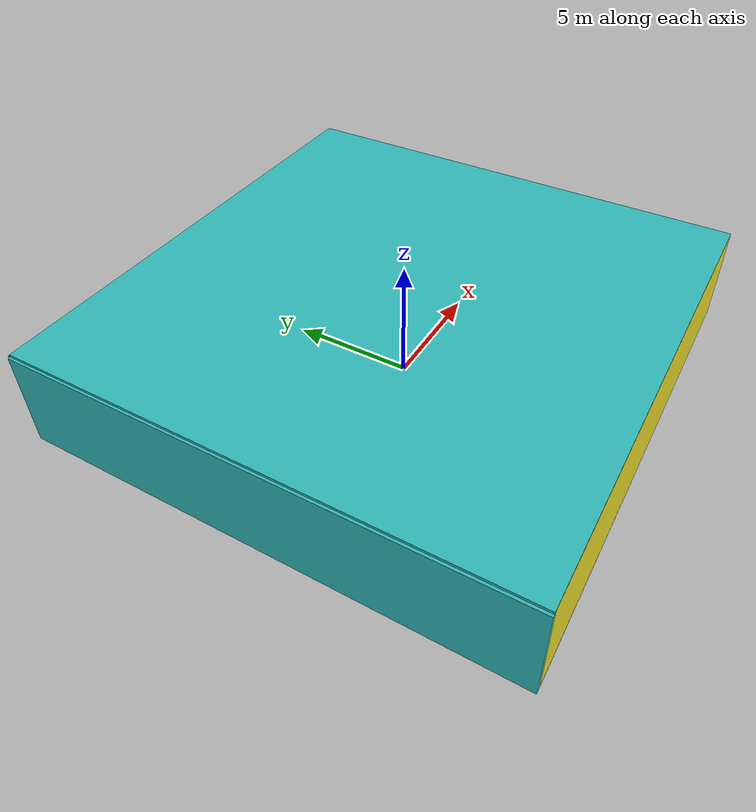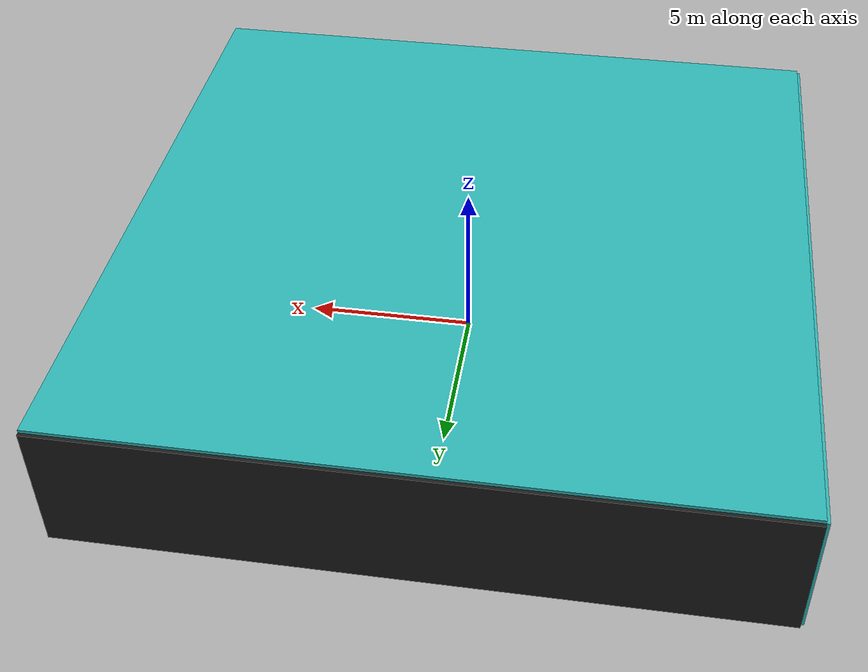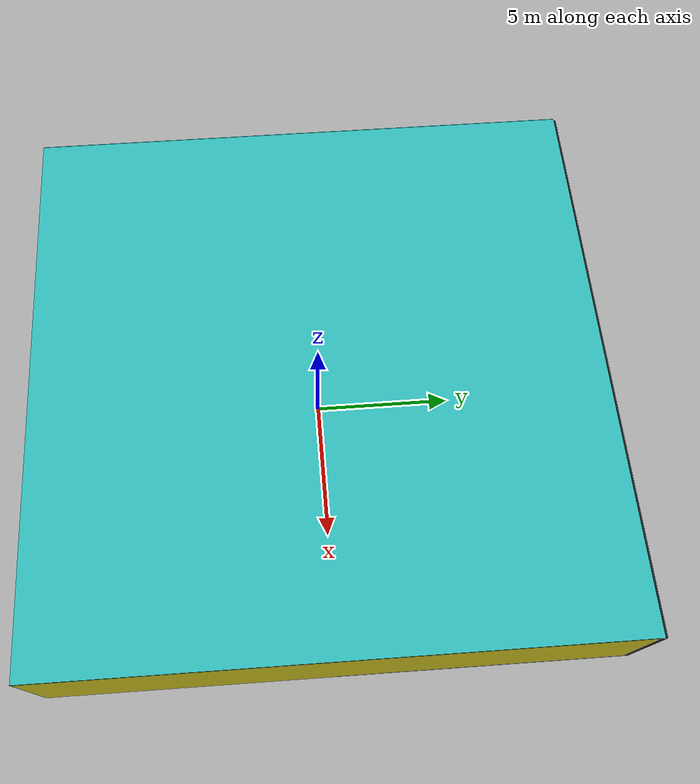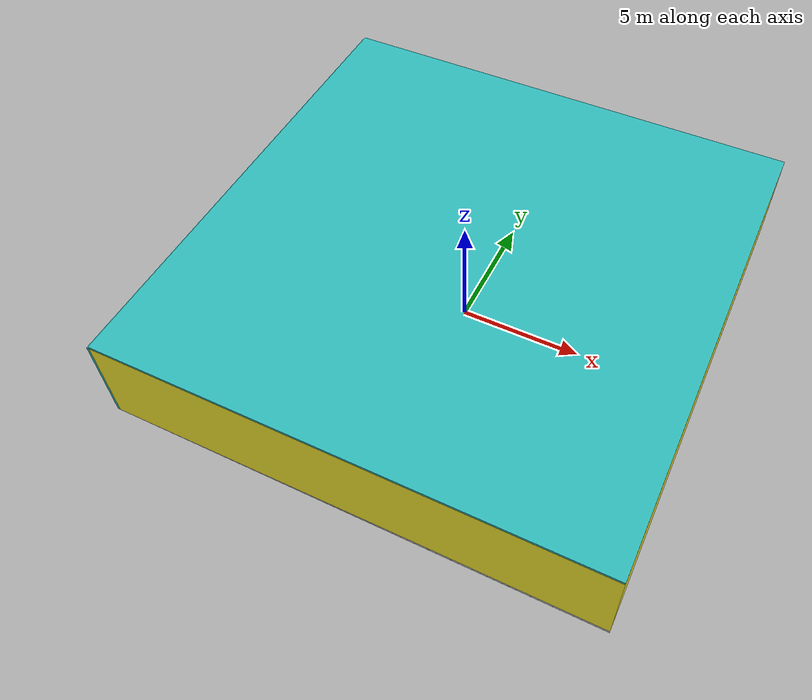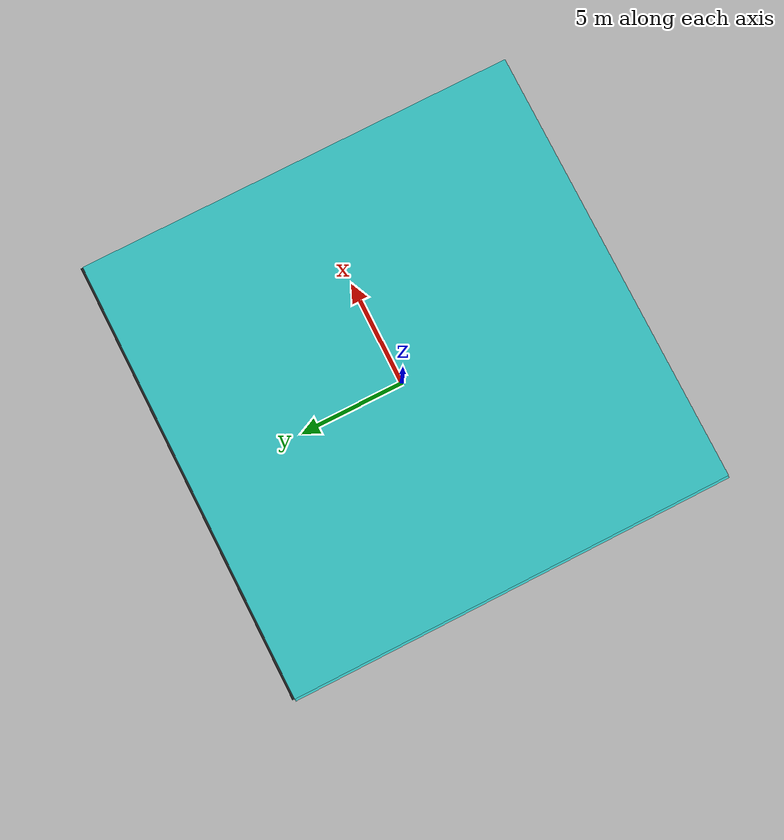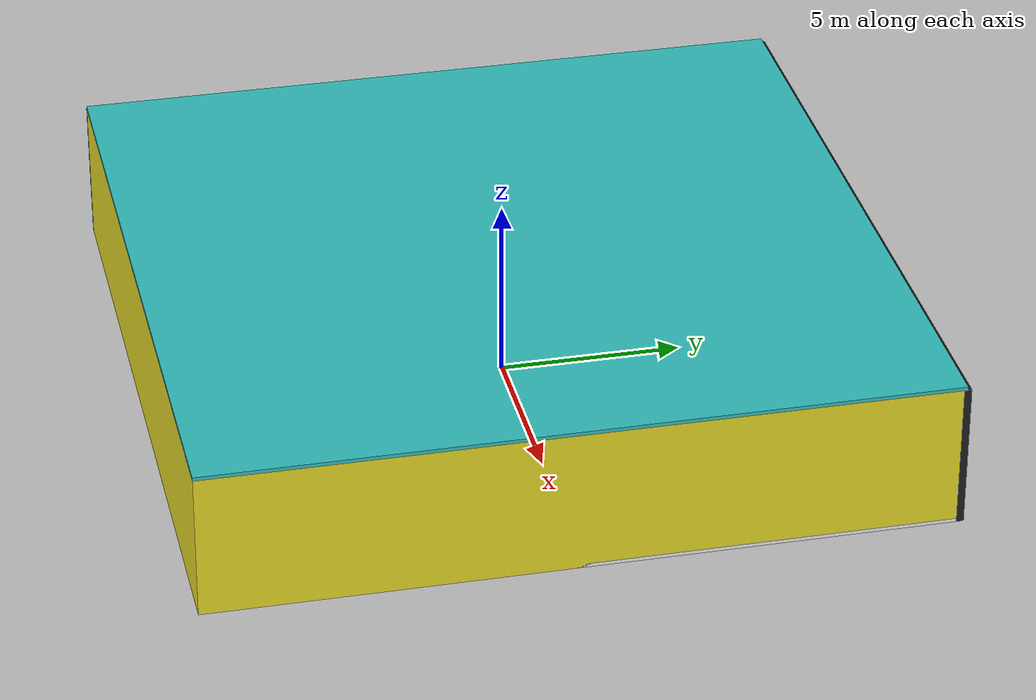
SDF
<sdf version="1.4">
 <world name="default">
  <physics type="ode">
   <max_step_size>0.001</max_step_size>
   <real_time_factor>1</real_time_factor>
   <real_time_update_rate>1000</real_time_update_rate>
   <gravity>0 0 -9.8</gravity>
  </physics>
  <scene><ambient>0.4 0.4 0.4 1</ambient><background>0.7 0.7 0.7 1</background><shadows>1</shadows></scene>
  <model name="Surrounding">
   <static>1</static>
   <link name="Ceiling">
    <collision name="Ceiling_Collision"><geometry><box><size>20 20 0.1</size></box></geometry></collision>
    <visual name="Ceiling_Visual">
     <geometry><box><size>20 20 0.1</size></box></geometry>
     <material>
      <script><uri>file://media/materials/scripts/gazebo.material</uri><name>Gazebo/Turquoise</name></script>
     </material>
    </visual>
    <pose>0 0 4.05 0 0 0</pose>
   </link>
   <link name="Wall_South">
    <collision name="Wall_South_Collision">
     <geometry><box><size>20 0 4</size></box></geometry>
     <pose>0 0 2 0 -0 0</pose>
    </collision>
    <visual name="Wall_South_Visual">
     <pose>0 0 2 0 -0 0</pose>
     <geometry><box><size>20 0 4</size></box></geometry>
     <material>
      <script><uri>file://media/materials/scripts/gazebo.material</uri><name>Gazebo/Yellow</name></script>
     </material>
    </visual>
    <velocity_decay><linear>0</linear><angular>0</angular></velocity_decay>
    <pose>0 -10 0 0 -0 0</pose>
   </link>
   <link name="Wall_East">
    <collision name="Wall_21_Collision">
     <geometry><box><size>20 0 4</size></box></geometry>
     <pose>0 0 2 0 -0 0</pose>
    </collision>
    <visual name="Wall_21_Visual">
     <pose>0 0 2 0 -0 0</pose>
     <geometry><box><size>20 0 4</size></box></geometry>
     <material>
      <script><uri>file://media/materials/scripts/gazebo.material</uri><name>Gazebo/YellowGlow</name></script>
     </material>
    </visual>
    <velocity_decay><linear>0</linear><angular>0</angular></velocity_decay>
    <pose>10 0 0 0 -0 1.5708</pose>
   </link>
   <link name="Wall_North">
    <collision name="Wall_22_Collision">
     <geometry><box><size>20 0.2 4</size></box></geometry>
     <pose>0 0 2 0 -0 0</pose>
    </collision>
    <visual name="Wall_22_Visual">
     <pose>0 0 2 0 -0 0</pose>
     <geometry><box><size>20 0.2 4</size></box></geometry>
     <material>
      <script><uri>file://media/materials/scripts/gazebo.material</uri><name>Gazebo/Black</name></script>
     </material>
    </visual>
    <velocity_decay><linear>0</linear><angular>0</angular></velocity_decay>
    <pose>0 10 0 0 -0 0</pose>
   </link>
   <link name="Wall_West">
    <collision name="Wall_23_Collision">
     <geometry><box><size>20 0.2 4</size></box></geometry>
     <pose>0 0 2 0 -0 0</pose>
    </collision>
    <visual name="Wall_23_Visual">
     <pose>0 0 2 0 -0 0</pose>
     <geometry><box><size>20 0.2 4</size></box></geometry>
     <material>
      <script>
       <uri>file://media/materials/scripts/gazebo.material</uri>
       <name>Gazebo/TurquoiseGlowOutline</name>
      </script>
     </material>
    </visual>
    <velocity_decay><linear>0</linear><angular>0</angular></velocity_decay>
    <pose>-10 0 0 0 0 -1.5708</pose>
   </link>
   <link name="Ground_link">
    <collision name="collision">
     <pose>0 0 .05 0 -0 0</pose>
     <geometry><box><size>20 20 0.1</size></box></geometry>
    </collision>
    <visual name="visual">
     <pose>0 0 .05 0 -0 0</pose>
     <geometry><box><size>20 20 0.1</size></box></geometry>
     <material>
      <script><uri>file://media/materials/scripts/gazebo.material</uri><name>Gazebo/WhiteGlow</name></script>
     </material>
    </visual>
   </link>
   <static>1</static>
  </model>
  <spherical_coordinates>
   <surface_model>EARTH_WGS84</surface_model>
   <latitude_deg>0</latitude_deg>
   <longitude_deg>0</longitude_deg>
   <elevation>0</elevation>
   <heading_deg>0</heading_deg>
  </spherical_coordinates>
  <light name="lightball_0" type="diffuse">
   <diffuse>0.8 0.8 0.8 1</diffuse>
   <specular>0.2 0.2 0.2 1</specular>
   <attenuation>
    <range>100</range>
    <constant>0.7</constant>
    <linear>0.01</linear>
    <quadratic>0.001</quadratic>
   </attenuation>
   <direction>-0.5 0.1 -0.9</direction>
   <pose>-6.14603489672 2.96548696634 3.82552128945 0 0 0</pose>
  </light>
  <light name="lightball_1" type="diffuse">
   <diffuse>0.8 0.8 0.8 1</diffuse>
   <specular>0.2 0.2 0.2 1</specular>
   <attenuation>
    <range>100</range>
    <constant>0.7</constant>
    <linear>0.01</linear>
    <quadratic>0.001</quadratic>
   </attenuation>
   <direction>-0.5 0.1 -0.9</direction>
   <pose>-7.19490152836 6.35351323935 3.30064436338 0 0 0</pose>
  </light>
  <include>
   <uri>model://robocup_3Dsim_goal</uri>
   <pose>-7.86262582595 -0.974140561262 0 0 0 0.203748001858</pose>
  </include>
  <include>
   <uri>model://textured_shapes</uri>
   <pose>-5.28557782527 -7.62732902938 0 0 0 1.49464686372</pose>
  </include>
  <include><uri>model://table</uri><pose>-5.6281731984 -1.16920306084 0 0 0 2.01560322294</pose></include>
  <include><uri>model://table</uri><pose>-5.25078599174 1.80850810094 0 0 0 2.67774276351</pose></include>
  <include><uri>model://table</uri><pose>-0.9122382538 -4.79266404396 0 0 0 0.422676920697</pose></include>
  <include>
   <uri>model://construction_cone</uri>
   <pose>-2.22544098605 -2.27570927697 0 0 0 1.99975531506</pose>
  </include>
  <include><uri>model://cabinet</uri><pose>1.92593707235 -4.9126887268 0 0 0 2.19013814372</pose></include>
  <include><uri>model://cabinet</uri><pose>3.64164623994 2.62885552099 0 0 0 2.97271565612</pose></include>
  <include><uri>model://table</uri><pose>8.50890361373 -0.78650373974 0 0 0 0.659744711573</pose></include>
 </world>
</sdf>

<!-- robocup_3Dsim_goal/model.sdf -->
<sdf version="1.5">
  <model name="robocup_3d_goal">
    <static>true</static>
    <link name="left_post">
      <pose>0 1.05 0.45 0 0 0</pose>
      <collision name="collision">
        <geometry>
          <cylinder>
            <radius>0.05</radius>
            <length>0.9</length>
          </cylinder>
        </geometry>
      </collision>
      <visual name="visual">
        <geometry>
          <cylinder>
            <radius>0.05</radius>
            <length>0.9</length>
          </cylinder>
        </geometry>
        <material>
          <script>
            <uri>file://media/materials/scripts/gazebo.material</uri>
            <name>Gazebo/ZincYellow</name>
          </script>
        </material>
      </visual>
    </link>
    <link name="left_support_horiz_lower">
      <pose>0.30 1.05 0.01 0 0 0</pose>
      <collision name="collision">
        <geometry>
          <box>
            <size>0.50 0.02 0.02</size>
          </box>
        </geometry>
      </collision>
      <visual name="visual">
        <geometry>
          <box>
            <size>0.50 0.02 0.02</size>
          </box>
        </geometry>
        <material>
          <script>
            <uri>file://media/materials/scripts/gazebo.material</uri>
            <name>Gazebo/White</name>
          </script>
        </material>
      </visual>
    </link>
    <link name="left_support_horiz_upper">
      <pose>0.30 1.05 0.79 0 0 0</pose>
      <collision name="collision">
        <geometry>
          <box>
            <size>0.50 0.02 0.02</size>
          </box>
        </geometry>
      </collision>
      <visual name="visual">
        <geometry>
          <box>
            <size>0.50 0.02 0.02</size>
          </box>
        </geometry>
        <material>
          <script>
            <uri>file://media/materials/scripts/gazebo.material</uri>
            <name>Gazebo/White</name>
          </script>
        </material>
      </visual>
    </link>
    <link name="left_support_vertical">
      <pose>0.56 1.05 0.4 0 1.5708 0</pose>
      <collision name="collision">
        <geometry>
          <box>
            <size>0.80 0.02 0.02</size>
          </box>
        </geometry>
      </collision>
      <visual name="visual">
        <geometry>
          <box>
            <size>0.80 0.02 0.02</size>
          </box>
        </geometry>
        <material>
          <script>
            <uri>file://media/materials/scripts/gazebo.material</uri>
            <name>Gazebo/White</name>
          </script>
        </material>
      </visual>
    </link>
    <link name="right_support_horiz_lower">
      <pose>0.30 -1.05 0.01 0 0 0</pose>
      <collision name="collision">
        <geometry>
          <box>
            <size>0.50 0.02 0.02</size>
          </box>
        </geometry>
      </collision>
      <visual name="visual">
        <geometry>
          <box>
            <size>0.50 0.02 0.02</size>
          </box>
        </geometry>
        <material>
          <script>
            <uri>file://media/materials/scripts/gazebo.material</uri>
            <name>Gazebo/White</name>
          </script>
        </material>
      </visual>
    </link>
    <link name="right_support_horiz_upper">
      <pose>0.30 -1.05 0.79 0 0 0</pose>
      <collision name="collision">
        <geometry>
          <box>
            <size>0.50 0.02 0.02</size>
          </box>
        </geometry>
      </collision>
      <visual name="visual">
        <geometry>
          <box>
            <size>0.50 0.02 0.02</size>
          </box>
        </geometry>
        <material>
          <script>
            <uri>file://media/materials/scripts/gazebo.material</uri>
            <name>Gazebo/White</name>
          </script>
        </material>
      </visual>
    </link>
    <link name="right_support_vertical">
      <pose>0.56 -1.05 0.4 0 1.5708 0</pose>
      <collision name="collision">
        <geometry>
          <box>
            <size>0.80 0.02 0.02</size>
          </box>
        </geometry>
      </collision>
      <visual name="visual">
        <geometry>
          <box>
            <size>0.80 0.02 0.02</size>
          </box>
        </geometry>
        <material>
          <script>
            <uri>file://media/materials/scripts/gazebo.material</uri>
            <name>Gazebo/White</name>
          </script>
        </material>
      </visual>
    </link>
    <link name="center_support_horiz_lower">
      <pose>0.56 0 0.01 0 1.5708 0</pose>
      <collision name="collision">
        <geometry>
          <box>
            <size>0.02 2.08 0.02</size>
          </box>
        </geometry>
      </collision>
      <visual name="visual">
        <geometry>
          <box>
            <size>0.02 2.08 0.02</size>
          </box>
        </geometry>
        <material>
          <script>
            <uri>file://media/materials/scripts/gazebo.material</uri>
            <name>Gazebo/White</name>
          </script>
        </material>
      </visual>
    </link>
    <link name="center_support_horiz_upper">
      <pose>0.56 0 0.79 0 1.5708 0</pose>
      <collision name="collision">
        <geometry>
          <box>
            <size>0.02 2.08 0.02</size>
          </box>
        </geometry>
      </collision>
      <visual name="visual">
        <geometry>
          <box>
            <size>0.02 2.08 0.02</size>
          </box>
        </geometry>
        <material>
          <script>
            <uri>file://media/materials/scripts/gazebo.material</uri>
            <name>Gazebo/White</name>
          </script>
        </material>
      </visual>
    </link>
    <link name="right_post">
      <pose>0 -1.05 0.45 0 0 0</pose>
      <collision name="collision">
        <geometry>
          <cylinder>
            <radius>0.05</radius>
            <length>0.9</length>
          </cylinder>
        </geometry>
      </collision>
      <visual name="visual">
        <geometry>
          <cylinder>
            <radius>0.05</radius>
            <length>0.9</length>
          </cylinder>
        </geometry>
        <material>
          <script>
            <uri>file://media/materials/scripts/gazebo.material</uri>
            <name>Gazebo/ZincYellow</name>
          </script>
        </material>
      </visual>
    </link>
    <link name="crossbar">
      <pose>0 0 0.85 1.57 1.57 0</pose>
      <collision name="collision">
        <geometry>
          <cylinder>
            <radius>0.05</radius>
            <length>2.0</length>
          </cylinder>
        </geometry>
      </collision>
      <visual name="visual">
        <geometry>
          <cylinder>
            <radius>0.05</radius>
            <length>2.0</length>
          </cylinder>
        </geometry>
        <material>
          <script>
            <uri>file://media/materials/scripts/gazebo.material</uri>
            <name>Gazebo/ZincYellow</name>
          </script>
        </material>
      </visual>
    </link>
    <link name="center_net">
      <pose>0.56 0 0.40 0 0 0</pose>
      <collision name="collision">
        <geometry>
          <box>
            <size>0.01 2.1 0.80</size>
          </box>
        </geometry>
      </collision>
      <visual name="visual">
        <geometry>
          <box>
            <size>0.01 2.1 0.80</size>
          </box>
        </geometry>
        <material>
          <script>
            <uri>model://../model_source/models/robocup09_spl_field/materials/scripts/</uri>
            <uri>model://../model_source/models/robocup09_spl_field/materials/textures/</uri>
            <name>RoboCup/Net</name>
          </script>
        </material>
      </visual>
    </link>
    <link name="left_net">
      <pose>0.30 1.05 0.40 0 0 0</pose>
      <collision name="collision">
        <geometry>
          <box>
            <size>0.50 0.01 0.76</size>
          </box>
        </geometry>
      </collision>
      <visual name="visual">
        <geometry>
          <box>
            <size>0.50 0.01 0.76</size>
          </box>
        </geometry>
        <material>
          <script>
            <uri>model://../model_source/models/robocup09_spl_field/materials/scripts/</uri>
            <uri>model://../model_source/models/robocup09_spl_field/materials/textures/</uri>
            <name>RoboCup/Net</name>
          </script>
        </material>
      </visual>
    </link>
    <link name="right_net">
      <pose>0.30 -1.05 0.40 0 0 0</pose>
      <collision name="collision">
        <geometry>
          <box>
            <size>0.50 0.01 0.76</size>
          </box>
        </geometry>
      </collision>
      <visual name="visual">
        <geometry>
          <box>
            <size>0.50 0.01 0.76</size>
          </box>
        </geometry>
        <material>
          <script>
            <uri>model://../model_source/models/robocup09_spl_field/materials/scripts/</uri>
            <uri>model://../model_source/models/robocup09_spl_field/materials/textures/</uri>
            <name>RoboCup/Net</name>
          </script>
        </material>
      </visual>
    </link>
  </model>
</sdf>

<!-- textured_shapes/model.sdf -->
<sdf version="1.6">
  <model name="textured_shapes">
    <pose>0 0 0.5 0 0 0</pose>
    <link name="box">
      <pose>0 -1.5 0 0 0 0</pose>
      <collision name="collision">
        <geometry>
          <box>
            <size>1 1 1</size>
          </box>
        </geometry>
      </collision>
      <visual name="visual">
        <geometry>
          <box>
            <size>1 1 1</size>
          </box>
        </geometry>
        <material>
          <script>
            <uri>model://../model_source/models/textured_shapes/materials/scripts</uri>
            <uri>model://../model_source/models/textured_shapes/materials/textures</uri>
            <name>TexturedShape/Squares</name>
          </script>
        </material>
      </visual>
    </link>
    <link name="sphere">
      <collision name="collision">
        <geometry>
          <sphere>
            <radius>0.5</radius>
          </sphere>
        </geometry>
      </collision>
      <visual name="visual">
        <geometry>
          <sphere>
            <radius>0.5</radius>
          </sphere>
        </geometry>
        <material>
          <script>
            <uri>model://../model_source/models/textured_shapes/materials/scripts</uri>
            <uri>model://../model_source/models/textured_shapes/materials/textures</uri>
            <name>TexturedShape/Squares</name>
          </script>
        </material>
      </visual>
    </link>
    <link name="cylinder">
      <pose>0 1.5 0 0 0 0</pose>
      <collision name="collision">
        <geometry>
          <cylinder>
            <radius>0.5</radius>
            <length>1</length>
          </cylinder>
        </geometry>
      </collision>
      <visual name="visual">
        <geometry>
          <cylinder>
            <radius>0.5</radius>
            <length>1</length>
          </cylinder>
        </geometry>
        <material>
          <script>
            <uri>model://../model_source/models/textured_shapes/materials/scripts</uri>
            <uri>model://../model_source/models/textured_shapes/materials/textures</uri>
            <name>TexturedShape/Squares</name>
          </script>
        </material>
      </visual>
    </link>
  </model>
</sdf>

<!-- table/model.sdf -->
<sdf version="1.5">
  <model name="table">
    <static>true</static>
    <link name="link">
      <collision name="surface">
        <pose>0 0 1.0 0 0 0</pose>
        <geometry>
          <box>
            <size>1.5 0.8 0.03</size>
          </box>
        </geometry>
        <surface>
          <friction>
            <ode>
              <mu>0.6</mu>
              <mu2>0.6</mu2>
            </ode>
          </friction>
        </surface>
      </collision>
      <visual name="visual1">
        <pose>0 0 1.0 0 0 0</pose>
        <geometry>
          <box>
            <size>1.5 0.8 0.03</size>
          </box>
        </geometry>
        <material>
          <script>
            <uri>model://media/materials/scripts/gazebo.material</uri>
            <name>Gazebo/Wood</name>
          </script>
        </material>
      </visual>
      <collision name="front_left_leg">
        <pose>0.68 0.38 0.5 0 0 0</pose>
        <geometry>
          <cylinder>
            <radius>0.02</radius>
            <length>1.0</length>
          </cylinder>
        </geometry>
      </collision>
      <visual name="front_left_leg">
        <pose>0.68 0.38 0.5 0 0 0</pose>
        <geometry>
          <cylinder>
            <radius>0.02</radius>
            <length>1.0</length>
          </cylinder>
        </geometry>
        <material>
          <script>
            <uri>model://media/materials/scripts/gazebo.material</uri>
            <name>Gazebo/Grey</name>
          </script>
        </material>
      </visual>
      <collision name="front_right_leg">
        <pose>0.68 -0.38 0.5 0 0 0</pose>
        <geometry>
          <cylinder>
            <radius>0.02</radius>
            <length>1.0</length>
          </cylinder>
        </geometry>
      </collision>
      <visual name="front_right_leg">
        <pose>0.68 -0.38 0.5 0 0 0</pose>
        <geometry>
          <cylinder>
            <radius>0.02</radius>
            <length>1.0</length>
          </cylinder>
        </geometry>
        <material>
          <script>
            <uri>model://media/materials/scripts/gazebo.material</uri>
            <name>Gazebo/Grey</name>
          </script>
        </material>
      </visual>
      <collision name="back_right_leg">
        <pose>-0.68 -0.38 0.5 0 0 0</pose>
        <geometry>
          <cylinder>
            <radius>0.02</radius>
            <length>1.0</length>
          </cylinder>
        </geometry>
      </collision>
      <visual name="back_right_leg">
        <pose>-0.68 -0.38 0.5 0 0 0</pose>
        <geometry>
          <cylinder>
            <radius>0.02</radius>
            <length>1.0</length>
          </cylinder>
        </geometry>
        <material>
          <script>
            <uri>model://media/materials/scripts/gazebo.material</uri>
            <name>Gazebo/Grey</name>
          </script>
        </material>
      </visual>
      <collision name="back_left_leg">
        <pose>-0.68 0.38 0.5 0 0 0</pose>
        <geometry>
          <cylinder>
            <radius>0.02</radius>
            <length>1.0</length>
          </cylinder>
        </geometry>
      </collision>
      <visual name="back_left_leg">
        <pose>-0.68 0.38 0.5 0 0 0</pose>
        <geometry>
          <cylinder>
            <radius>0.02</radius>
            <length>1.0</length>
          </cylinder>
        </geometry>
        <material>
          <script>
            <uri>model://media/materials/scripts/gazebo.material</uri>
            <name>Gazebo/Grey</name>
          </script>
        </material>
      </visual>
    </link>
  </model>
</sdf>

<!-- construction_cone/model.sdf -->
<sdf version="1.5">
  <model name="Construction Cone">
    <link name="link">
      <collision name="collision">
        <geometry>
          <mesh>
            <scale>10 10 10</scale>
            <uri>file://isr-testbed/construction_cone/meshes/construction_cone.dae</uri>
          </mesh>
        </geometry>
      </collision>
      <visual name="visual">
        <geometry>
          <mesh>
            <scale>10 10 10</scale>
            <uri>file://isr-testbed/construction_cone/meshes/construction_cone.dae</uri>
          </mesh>
        </geometry>
      </visual>
    </link>
  </model>
</sdf>

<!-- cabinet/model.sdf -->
<sdf version="1.5">
  <model name="cabinet">
    <static>true</static>
    <link name="cabinet_bottom_plate">
      <inertial>
        <pose>0 0 -1 0 0 0</pose>
        <inertia>
          <ixx>2.050000</ixx>
          <ixy>0</ixy>
          <ixz>0</ixz>
          <iyy>2.050000</iyy>
          <iyz>0</iyz>
          <izz>2.050000</izz>
        </inertia>
        <mass>25.000000</mass>
      </inertial>
      <collision name="cabinet_bottom_plate_geom">
        <pose>0 0 0.010000 0 0 0</pose>
        <geometry>
          <box>
            <size>0.450000 0.450000 0.020000</size>
          </box>
        </geometry>
      </collision>
      <visual name="cabinet_bottom_plate_geom_visual">
        <pose>0 0 0.010000 0 0 0</pose>
        <geometry>
          <box>
            <size>0.450000 0.450000 0.020000</size>
          </box>
        </geometry>
        <material>
          <script>
            <uri>model://media/materials/scripts/gazebo.material</uri>
            <name>Gazebo/Wood</name>
          </script>
        </material>
      </visual>
      <collision name="cabinet_bottom_plate_geom_cabinet_back_plate">
        <pose>0.235000 0 0.510000 0 0 0</pose>
        <geometry>
          <box>
            <size>0.020000 0.450000 1.020000</size>
          </box>
        </geometry>
      </collision>
      <visual name="cabinet_bottom_plate_geom_cabinet_back_plate_visual">
        <pose>0.235000 0 0.510000 0 0 0</pose>
        <geometry>
          <box>
            <size>0.020000 0.450000 1.020000</size>
          </box>
        </geometry>
        <material>
          <script>
            <uri>model://media/materials/scripts/gazebo.material</uri>
            <name>Gazebo/Wood</name>
          </script>
        </material>
      </visual>
      <collision name="cabinet_bottom_plate_geom_cabinet_left_plate">
        <pose>0 0.235000 0.510000 0 0 0</pose>
        <geometry>
          <box>
            <size>0.450000 0.020000 1.020000</size>
          </box>
        </geometry>
      </collision>
      <visual name="cabinet_bottom_plate_geom_cabinet_left_plate_visual">
        <pose>0 0.235000 0.510000 0 0 0</pose>
        <geometry>
          <box>
            <size>0.450000 0.020000 1.020000</size>
          </box>
        </geometry>
        <material>
          <script>
            <uri>model://media/materials/scripts/gazebo.material</uri>
            <name>Gazebo/Wood</name>
          </script>
        </material>
      </visual>
      <collision name="cabinet_bottom_plate_geom_cabinet_middle_plate">
        <pose>0 0 0.510000 0 0 0</pose>
        <geometry>
          <box>
            <size>0.450000 0.450000 0.020000</size>
          </box>
        </geometry>
      </collision>
      <visual name="cabinet_bottom_plate_geom_cabinet_middle_plate_visual">
        <pose>0 0 0.510000 0 0 0</pose>
        <geometry>
          <box>
            <size>0.450000 0.450000 0.020000</size>
          </box>
        </geometry>
        <material>
          <script>
            <uri>model://media/materials/scripts/gazebo.material</uri>
            <name>Gazebo/Wood</name>
          </script>
        </material>
      </visual>
      <collision name="cabinet_bottom_plate_geom_cabinet_right_plate">
        <pose>0 -0.235000 0.510000 0 0 0</pose>
        <geometry>
          <box>
            <size>0.450000 0.020000 1.020000</size>
          </box>
        </geometry>
      </collision>
      <visual name="cabinet_bottom_plate_geom_cabinet_right_plate_visual">
        <pose>0 -0.235000 0.510000 0 0 0</pose>
        <geometry>
          <box>
            <size>0.450000 0.020000 1.020000</size>
          </box>
        </geometry>
        <material>
          <script>
            <uri>model://media/materials/scripts/gazebo.material</uri>
            <name>Gazebo/Wood</name>
          </script>
        </material>
      </visual>
      <collision name="cabinet_bottom_plate_geom_cabinet_top_plate">
        <pose>0 0 1.010000 0 0 0</pose>
        <geometry>
          <box>
            <size>0.450000 0.450000 0.020000</size>
          </box>
        </geometry>
      </collision>
      <visual name="cabinet_bottom_plate_geom_cabinet_top_plate_visual">
        <pose>0 0 1.010000 0 0 0</pose>
        <geometry>
          <box>
            <size>0.450000 0.450000 0.020000</size>
          </box>
        </geometry>
        <material>
          <script>
            <uri>model://media/materials/scripts/gazebo.material</uri>
            <name>Gazebo/Wood</name>
          </script>
        </material>
      </visual>
    </link>
  </model>
</sdf>
